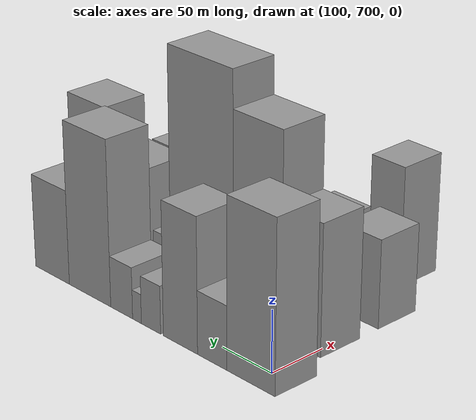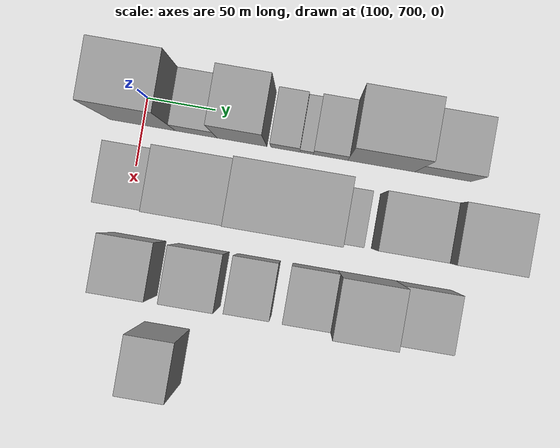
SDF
<sdf version="1.6">
 <world name="default">
  <model name="building_55">
   <static>1</static>
   <pose>100.0000 700.2312 0 0.000000 0.000000 0.000000</pose>
   <link name="link">
    <pose>0 0 67.50 0 0 0</pose>
    <collision name="collision"><geometry><box><size>40.0000 48.0550 135.0000</size></box></geometry></collision>
    <visual name="visual">
     <cast_shadows>0</cast_shadows>
     <geometry><box><size>40.0000 48.0550 135.0000</size></box></geometry>
     <material>
      <script>
       <uri>model://grey_wall/materials/scripts</uri>
       <uri>model://grey_wall/materials/textures</uri>
       <name>vrc/grey_wall</name>
      </script>
     </material>
    </visual>
   </link>
  </model>
  <model name="building_56">
   <static>1</static>
   <pose>100.0000 739.4798 0 0.000000 0.000000 0.000000</pose>
   <link name="link">
    <pose>0 0 25.50 0 0 0</pose>
    <collision name="collision"><geometry><box><size>40.0000 30.4422 51.0000</size></box></geometry></collision>
    <visual name="visual">
     <cast_shadows>0</cast_shadows>
     <geometry><box><size>40.0000 30.4422 51.0000</size></box></geometry>
     <material>
      <script>
       <uri>model://grey_wall/materials/scripts</uri>
       <uri>model://grey_wall/materials/textures</uri>
       <name>vrc/grey_wall</name>
      </script>
     </material>
    </visual>
   </link>
  </model>
  <model name="building_57">
   <static>1</static>
   <pose>100.0000 773.0551 0 0.000000 0.000000 0.000000</pose>
   <link name="link">
    <pose>0 0 54.00 0 0 0</pose>
    <collision name="collision"><geometry><box><size>40.0000 36.7085 108.0000</size></box></geometry></collision>
    <visual name="visual">
     <cast_shadows>0</cast_shadows>
     <geometry><box><size>40.0000 36.7085 108.0000</size></box></geometry>
     <material>
      <script>
       <uri>model://grey_wall/materials/scripts</uri>
       <uri>model://grey_wall/materials/textures</uri>
       <name>vrc/grey_wall</name>
      </script>
     </material>
    </visual>
   </link>
  </model>
  <model name="building_58">
   <static>1</static>
   <pose>100.0000 805.1073 0 0.000000 0.000000 0.000000</pose>
   <link name="link">
    <pose>0 0 19.50 0 0 0</pose>
    <collision name="collision"><geometry><box><size>40.0000 21.3959 39.0000</size></box></geometry></collision>
    <visual name="visual">
     <cast_shadows>0</cast_shadows>
     <geometry><box><size>40.0000 21.3959 39.0000</size></box></geometry>
     <material>
      <script>
       <uri>model://grey_wall/materials/scripts</uri>
       <uri>model://grey_wall/materials/textures</uri>
       <name>vrc/grey_wall</name>
      </script>
     </material>
    </visual>
   </link>
  </model>
  <model name="building_59">
   <static>1</static>
   <pose>100.0000 820.7397 0 0.000000 0.000000 0.000000</pose>
   <link name="link">
    <pose>0 0 12.00 0 0 0</pose>
    <collision name="collision"><geometry><box><size>40.0000 9.8689 24.0000</size></box></geometry></collision>
    <visual name="visual">
     <cast_shadows>0</cast_shadows>
     <geometry><box><size>40.0000 9.8689 24.0000</size></box></geometry>
     <material>
      <script>
       <uri>model://grey_wall/materials/scripts</uri>
       <uri>model://grey_wall/materials/textures</uri>
       <name>vrc/grey_wall</name>
      </script>
     </material>
    </visual>
   </link>
  </model>
  <model name="building_60">
   <static>1</static>
   <pose>100.0000 838.1900 0 0.000000 0.000000 0.000000</pose>
   <link name="link">
    <pose>0 0 21.00 0 0 0</pose>
    <collision name="collision"><geometry><box><size>40.0000 25.0318 42.0000</size></box></geometry></collision>
    <visual name="visual">
     <cast_shadows>0</cast_shadows>
     <geometry><box><size>40.0000 25.0318 42.0000</size></box></geometry>
     <material>
      <script>
       <uri>model://grey_wall/materials/scripts</uri>
       <uri>model://grey_wall/materials/textures</uri>
       <name>vrc/grey_wall</name>
      </script>
     </material>
    </visual>
   </link>
  </model>
  <model name="building_61">
   <static>1</static>
   <pose>100.0000 875.2933 0 0.000000 0.000000 0.000000</pose>
   <link name="link">
    <pose>0 0 67.50 0 0 0</pose>
    <collision name="collision"><geometry><box><size>40.0000 49.1748 135.0000</size></box></geometry></collision>
    <visual name="visual">
     <cast_shadows>0</cast_shadows>
     <geometry><box><size>40.0000 49.1748 135.0000</size></box></geometry>
     <material>
      <script>
       <uri>model://grey_wall/materials/scripts</uri>
       <uri>model://grey_wall/materials/textures</uri>
       <name>vrc/grey_wall</name>
      </script>
     </material>
    </visual>
   </link>
  </model>
  <model name="building_62">
   <static>1</static>
   <pose>100.0000 920.6999 0 0.000000 0.000000 0.000000</pose>
   <link name="link">
    <pose>0 0 39.00 0 0 0</pose>
    <collision name="collision"><geometry><box><size>40.0000 41.6384 78.0000</size></box></geometry></collision>
    <visual name="visual">
     <cast_shadows>0</cast_shadows>
     <geometry><box><size>40.0000 41.6384 78.0000</size></box></geometry>
     <material>
      <script>
       <uri>model://grey_wall/materials/scripts</uri>
       <uri>model://grey_wall/materials/textures</uri>
       <name>vrc/grey_wall</name>
      </script>
     </material>
    </visual>
   </link>
  </model>
  <model name="building_113">
   <static>1</static>
   <pose>160.0000 711.7422 0 0.000000 0.000000 0.000000</pose>
   <link name="link">
    <pose>0 0 52.50 0 0 0</pose>
    <collision name="collision"><geometry><box><size>40.0000 39.3722 105.0000</size></box></geometry></collision>
    <visual name="visual">
     <cast_shadows>0</cast_shadows>
     <geometry><box><size>40.0000 39.3722 105.0000</size></box></geometry>
     <material>
      <script>
       <uri>model://grey_wall/materials/scripts</uri>
       <uri>model://grey_wall/materials/textures</uri>
       <name>vrc/grey_wall</name>
      </script>
     </material>
    </visual>
   </link>
  </model>
  <model name="building_114">
   <static>1</static>
   <pose>160.0000 756.8263 0 0.000000 0.000000 0.000000</pose>
   <link name="link">
    <pose>0 0 81.00 0 0 0</pose>
    <collision name="collision"><geometry><box><size>40.0000 50.7960 162.0000</size></box></geometry></collision>
    <visual name="visual">
     <cast_shadows>0</cast_shadows>
     <geometry><box><size>40.0000 50.7960 162.0000</size></box></geometry>
     <material>
      <script>
       <uri>model://grey_wall/materials/scripts</uri>
       <uri>model://grey_wall/materials/textures</uri>
       <name>vrc/grey_wall</name>
      </script>
     </material>
    </visual>
   </link>
  </model>
  <model name="building_115">
   <static>1</static>
   <pose>160.0000 816.8667 0 0.000000 0.000000 0.000000</pose>
   <link name="link">
    <pose>0 0 96.00 0 0 0</pose>
    <collision name="collision"><geometry><box><size>40.0000 69.2849 192.0000</size></box></geometry></collision>
    <visual name="visual">
     <cast_shadows>0</cast_shadows>
     <geometry><box><size>40.0000 69.2849 192.0000</size></box></geometry>
     <material>
      <script>
       <uri>model://grey_wall/materials/scripts</uri>
       <uri>model://grey_wall/materials/textures</uri>
       <name>vrc/grey_wall</name>
      </script>
     </material>
    </visual>
   </link>
  </model>
  <model name="building_116">
   <static>1</static>
   <pose>160.0000 861.3862 0 0.000000 0.000000 0.000000</pose>
   <link name="link">
    <pose>0 0 18.00 0 0 0</pose>
    <collision name="collision"><geometry><box><size>40.0000 19.7540 36.0000</size></box></geometry></collision>
    <visual name="visual">
     <cast_shadows>0</cast_shadows>
     <geometry><box><size>40.0000 19.7540 36.0000</size></box></geometry>
     <material>
      <script>
       <uri>model://grey_wall/materials/scripts</uri>
       <uri>model://grey_wall/materials/textures</uri>
       <name>vrc/grey_wall</name>
      </script>
     </material>
    </visual>
   </link>
  </model>
  <model name="building_117">
   <static>1</static>
   <pose>160.0000 901.9745 0 0.000000 0.000000 0.000000</pose>
   <link name="link">
    <pose>0 0 42.00 0 0 0</pose>
    <collision name="collision"><geometry><box><size>40.0000 47.4226 84.0000</size></box></geometry></collision>
    <visual name="visual">
     <cast_shadows>0</cast_shadows>
     <geometry><box><size>40.0000 47.4226 84.0000</size></box></geometry>
     <material>
      <script>
       <uri>model://grey_wall/materials/scripts</uri>
       <uri>model://grey_wall/materials/textures</uri>
       <name>vrc/grey_wall</name>
      </script>
     </material>
    </visual>
   </link>
  </model>
  <model name="building_118">
   <static>1</static>
   <pose>160.0000 948.2440 0 0.000000 0.000000 0.000000</pose>
   <link name="link">
    <pose>0 0 60.00 0 0 0</pose>
    <collision name="collision"><geometry><box><size>40.0000 45.1164 120.0000</size></box></geometry></collision>
    <visual name="visual">
     <cast_shadows>0</cast_shadows>
     <geometry><box><size>40.0000 45.1164 120.0000</size></box></geometry>
     <material>
      <script>
       <uri>model://grey_wall/materials/scripts</uri>
       <uri>model://grey_wall/materials/textures</uri>
       <name>vrc/grey_wall</name>
      </script>
     </material>
    </visual>
   </link>
  </model>
  <model name="building_169">
   <static>1</static>
   <pose>220.0000 711.7652 0 0.000000 0.000000 0.000000</pose>
   <link name="link">
    <pose>0 0 36.00 0 0 0</pose>
    <collision name="collision"><geometry><box><size>40.0000 38.5053 72.0000</size></box></geometry></collision>
    <visual name="visual">
     <cast_shadows>0</cast_shadows>
     <geometry><box><size>40.0000 38.5053 72.0000</size></box></geometry>
     <material>
      <script>
       <uri>model://grey_wall/materials/scripts</uri>
       <uri>model://grey_wall/materials/textures</uri>
       <name>vrc/grey_wall</name>
      </script>
     </material>
    </visual>
   </link>
  </model>
  <model name="building_170">
   <static>1</static>
   <pose>220.0000 758.7957 0 0.000000 0.000000 0.000000</pose>
   <link name="link">
    <pose>0 0 34.50 0 0 0</pose>
    <collision name="collision"><geometry><box><size>40.0000 37.5557 69.0000</size></box></geometry></collision>
    <visual name="visual">
     <cast_shadows>0</cast_shadows>
     <geometry><box><size>40.0000 37.5557 69.0000</size></box></geometry>
     <material>
      <script>
       <uri>model://grey_wall/materials/scripts</uri>
       <uri>model://grey_wall/materials/textures</uri>
       <name>vrc/grey_wall</name>
      </script>
     </material>
    </visual>
   </link>
  </model>
  <model name="building_171">
   <static>1</static>
   <pose>220.0000 799.3891 0 0.000000 0.000000 0.000000</pose>
   <link name="link">
    <pose>0 0 28.50 0 0 0</pose>
    <collision name="collision"><geometry><box><size>40.0000 31.6310 57.0000</size></box></geometry></collision>
    <visual name="visual">
     <cast_shadows>0</cast_shadows>
     <geometry><box><size>40.0000 31.6310 57.0000</size></box></geometry>
     <material>
      <script>
       <uri>model://grey_wall/materials/scripts</uri>
       <uri>model://grey_wall/materials/textures</uri>
       <name>vrc/grey_wall</name>
      </script>
     </material>
    </visual>
   </link>
  </model>
  <model name="building_172">
   <static>1</static>
   <pose>220.0000 840.8275 0 0.000000 0.000000 0.000000</pose>
   <link name="link">
    <pose>0 0 30.00 0 0 0</pose>
    <collision name="collision"><geometry><box><size>40.0000 33.2458 60.0000</size></box></geometry></collision>
    <visual name="visual">
     <cast_shadows>0</cast_shadows>
     <geometry><box><size>40.0000 33.2458 60.0000</size></box></geometry>
     <material>
      <script>
       <uri>model://grey_wall/materials/scripts</uri>
       <uri>model://grey_wall/materials/textures</uri>
       <name>vrc/grey_wall</name>
      </script>
     </material>
    </visual>
   </link>
  </model>
  <model name="building_173">
   <static>1</static>
   <pose>220.0000 878.7374 0 0.000000 0.000000 0.000000</pose>
   <link name="link">
    <pose>0 0 57.00 0 0 0</pose>
    <collision name="collision"><geometry><box><size>40.0000 42.5741 114.0000</size></box></geometry></collision>
    <visual name="visual">
     <cast_shadows>0</cast_shadows>
     <geometry><box><size>40.0000 42.5741 114.0000</size></box></geometry>
     <material>
      <script>
       <uri>model://grey_wall/materials/scripts</uri>
       <uri>model://grey_wall/materials/textures</uri>
       <name>vrc/grey_wall</name>
      </script>
     </material>
    </visual>
   </link>
  </model>
  <model name="building_174">
   <static>1</static>
   <pose>220.0000 920.3426 0 0.000000 0.000000 0.000000</pose>
   <link name="link">
    <pose>0 0 36.00 0 0 0</pose>
    <collision name="collision"><geometry><box><size>40.0000 40.6361 72.0000</size></box></geometry></collision>
    <visual name="visual">
     <cast_shadows>0</cast_shadows>
     <geometry><box><size>40.0000 40.6361 72.0000</size></box></geometry>
     <material>
      <script>
       <uri>model://grey_wall/materials/scripts</uri>
       <uri>model://grey_wall/materials/textures</uri>
       <name>vrc/grey_wall</name>
      </script>
     </material>
    </visual>
   </link>
  </model>
  <model name="building_220">
   <static>1</static>
   <pose>280.0000 742.0530 0 0.000000 0.000000 0.000000</pose>
   <link name="link">
    <pose>0 0 49.50 0 0 0</pose>
    <collision name="collision"><geometry><box><size>40.0000 33.1972 99.0000</size></box></geometry></collision>
    <visual name="visual">
     <cast_shadows>0</cast_shadows>
     <geometry><box><size>40.0000 33.1972 99.0000</size></box></geometry>
     <material>
      <script>
       <uri>model://grey_wall/materials/scripts</uri>
       <uri>model://grey_wall/materials/textures</uri>
       <name>vrc/grey_wall</name>
      </script>
     </material>
    </visual>
   </link>
  </model>
 </world>
</sdf>
